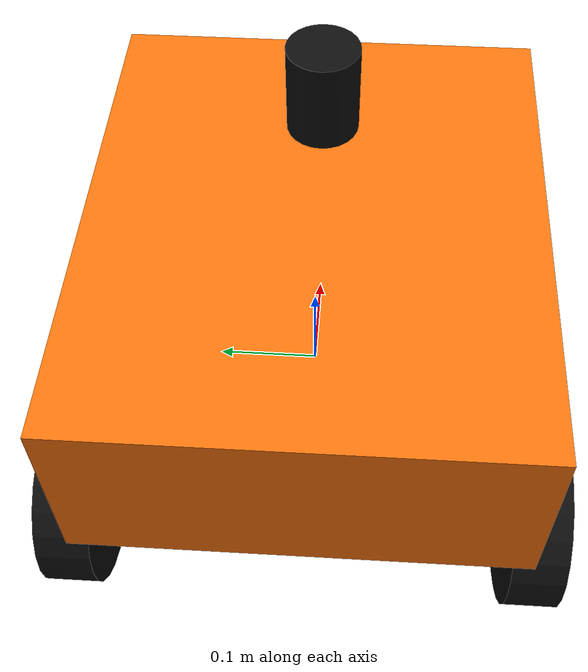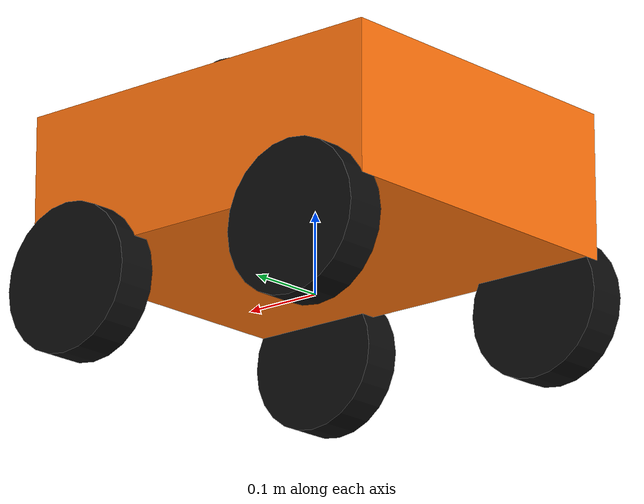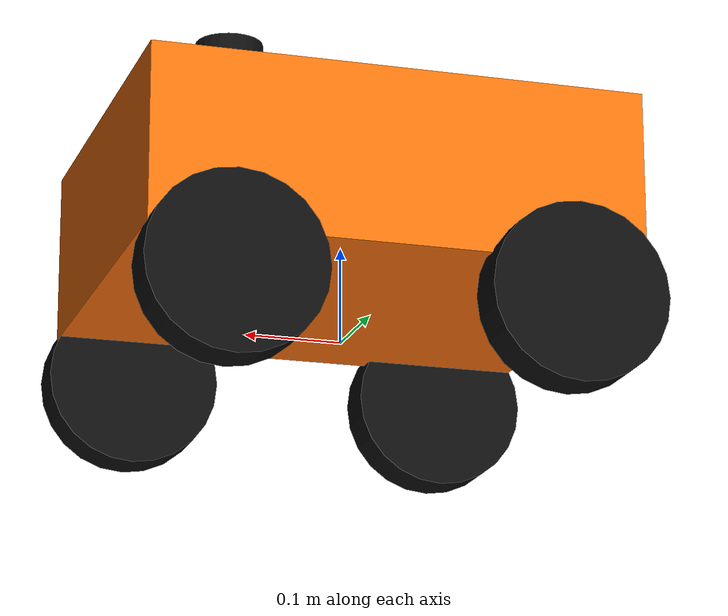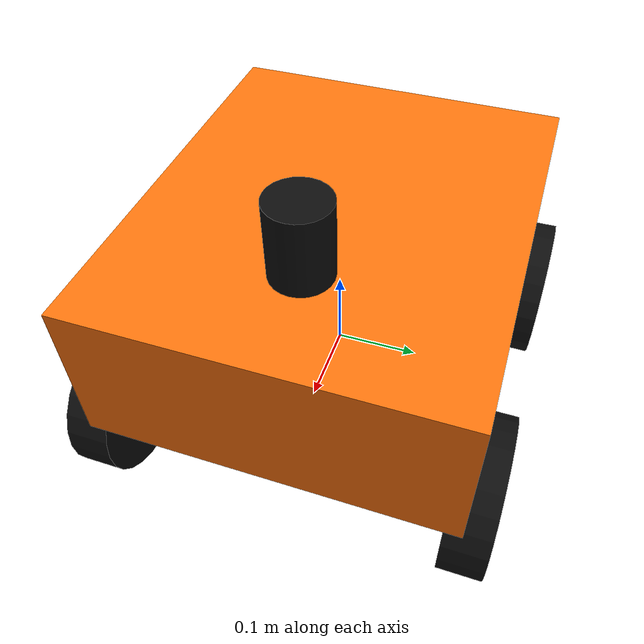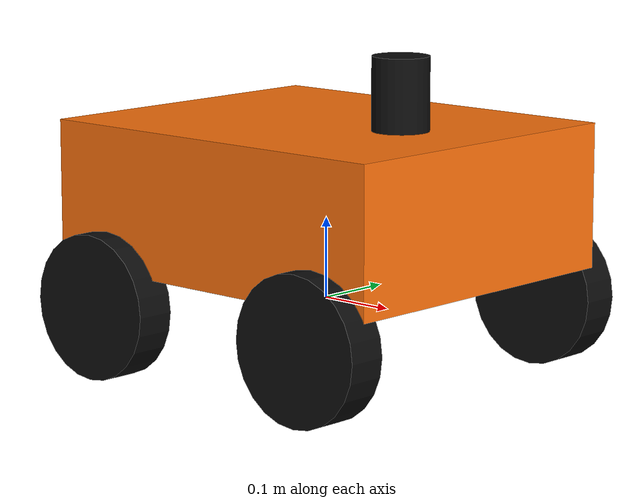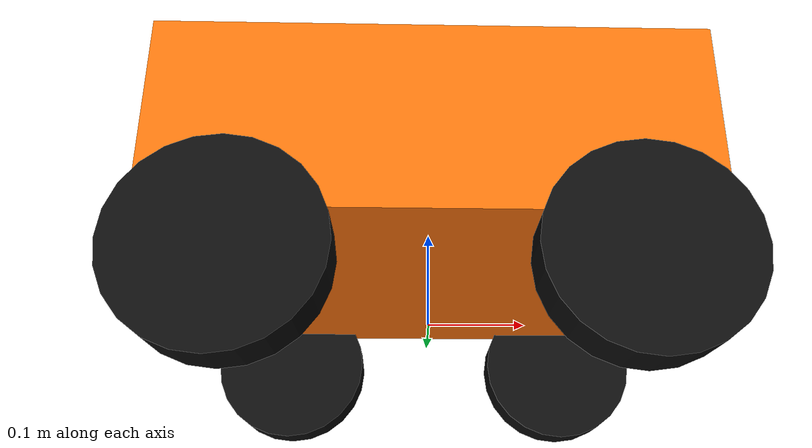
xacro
<?xml version="1.0"?>
<robot xmlns:xacro="http://www.ros.org/wiki/xacro">

    <!-- Geometry constants (metres) -->
    <xacro:property name="chassis_length" value="0.50"/>
    <xacro:property name="chassis_width"  value="0.42"/>
    <xacro:property name="chassis_height" value="0.18"/>
    <xacro:property name="wheel_radius"   value="0.09"/>
    <xacro:property name="wheel_width"    value="0.05"/>
    <xacro:property name="wheel_x"        value="0.17"/>   <!-- half wheel base -->
    <xacro:property name="wheel_y"        value="0.215"/>  <!-- half track width -->

    <material name="white">  <color rgba="1 1 1 1"/>          </material>
    <material name="orange"> <color rgba="1 0.45 0.05 1"/>    </material>
    <material name="blue">   <color rgba="0.2 0.2 1 1"/>      </material>
    <material name="black">  <color rgba="0.05 0.05 0.05 1"/> </material>
    <material name="gray">   <color rgba="0.5 0.5 0.5 1"/>    </material>

    <!-- BASE LINK: origin sits on the wheel axle centre line -->
    <link name="base_link"/>

    <!-- BASE FOOTPRINT: projection of base_link onto the floor -->
    <joint name="base_footprint_joint" type="fixed">
        <parent link="base_link"/>
        <child  link="base_footprint"/>
        <origin xyz="0 0 -${wheel_radius}" rpy="0 0 0"/>
    </joint>
    <link name="base_footprint"/>

    <!-- CHASSIS -->
    <joint name="chassis_joint" type="fixed">
        <parent link="base_link"/>
        <child  link="chassis"/>
        <origin xyz="0 0 0" rpy="0 0 0"/>
    </joint>

    <link name="chassis">
        <visual>
            <origin xyz="0 0 ${chassis_height/2 + 0.04}" rpy="0 0 0"/>
            <geometry>
                <box size="${chassis_length} ${chassis_width} ${chassis_height}"/>
            </geometry>
            <material name="orange"/>
        </visual>
        <collision>
            <origin xyz="0 0 ${chassis_height/2 + 0.04}" rpy="0 0 0"/>
            <geometry>
                <box size="${chassis_length} ${chassis_width} ${chassis_height}"/>
            </geometry>
        </collision>
        <xacro:inertial_box mass="18.0" x="${chassis_length}" y="${chassis_width}" z="${chassis_height}">
            <origin xyz="0 0 ${chassis_height/2 + 0.04}" rpy="0 0 0"/>
        </xacro:inertial_box>
    </link>
    <gazebo reference="chassis">
        <material>Gazebo/Orange</material>
    </gazebo>

    <!-- SENSOR MAST: raises the LiDAR above the chassis deck -->
    <joint name="mast_joint" type="fixed">
        <parent link="chassis"/>
        <child  link="mast"/>
        <origin xyz="0.12 0 ${chassis_height + 0.04}" rpy="0 0 0"/>
    </joint>

    <link name="mast">
        <visual>
            <origin xyz="0 0 0.045" rpy="0 0 0"/>
            <geometry>
                <cylinder radius="0.035" length="0.09"/>
            </geometry>
            <material name="black"/>
        </visual>
        <collision>
            <origin xyz="0 0 0.045" rpy="0 0 0"/>
            <geometry>
                <cylinder radius="0.035" length="0.09"/>
            </geometry>
        </collision>
        <xacro:inertial_cylinder mass="0.4" length="0.09" radius="0.035">
            <origin xyz="0 0 0.045" rpy="0 0 0"/>
        </xacro:inertial_cylinder>
    </link>
    <gazebo reference="mast">
        <material>Gazebo/FlatBlack</material>
    </gazebo>

    <!-- ================== WHEELS ================== -->
    <!-- prefix: front_left / front_right / back_left / back_right
         x_sign: +1 front, -1 back      y_sign: +1 left, -1 right -->
    <xacro:macro name="drive_wheel" params="prefix x_sign y_sign colour gz_colour">
        <joint name="${prefix}_wheel_joint" type="continuous">
            <parent link="base_link"/>
            <child  link="${prefix}_wheel"/>
            <origin xyz="${x_sign * wheel_x} ${y_sign * wheel_y} 0"
                    rpy="${-y_sign * pi/2} 0 0"/>
            <axis xyz="0 0 ${y_sign}"/>
            <dynamics damping="0.05" friction="0.05"/>
        </joint>

        <link name="${prefix}_wheel">
            <visual>
                <geometry>
                    <cylinder radius="${wheel_radius}" length="${wheel_width}"/>
                </geometry>
                <material name="${colour}"/>
            </visual>
            <collision>
                <geometry>
                    <cylinder radius="${wheel_radius}" length="${wheel_width}"/>
                </geometry>
            </collision>
            <xacro:inertial_cylinder mass="1.5" length="${wheel_width}" radius="${wheel_radius}">
                <origin xyz="0 0 0" rpy="0 0 0"/>
            </xacro:inertial_cylinder>
        </link>

        <gazebo reference="${prefix}_wheel">
            <material>Gazebo/${gz_colour}</material>
            <fdir1>0 0 1</fdir1>
            <mu1>0.2</mu1>
            <mu2>1.0</mu2>
            <kp>1000000.0</kp>
            <kd>10.0</kd>
        </gazebo>
    </xacro:macro>

    <xacro:drive_wheel prefix="front_left"  x_sign="1"  y_sign="1"  colour="black" gz_colour="FlatBlack"/>
    <xacro:drive_wheel prefix="front_right" x_sign="1"  y_sign="-1" colour="black" gz_colour="FlatBlack"/>
    <xacro:drive_wheel prefix="back_left"   x_sign="-1" y_sign="1"  colour="black" gz_colour="FlatBlack"/>
    <xacro:drive_wheel prefix="back_right"  x_sign="-1" y_sign="-1" colour="black" gz_colour="FlatBlack"/>

</robot>
